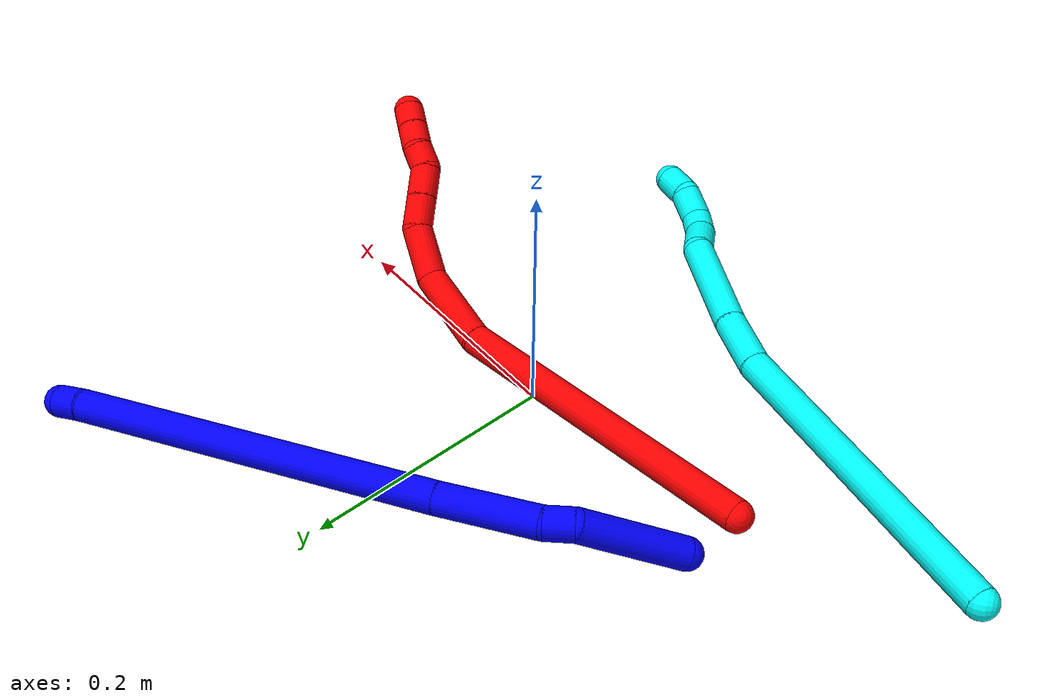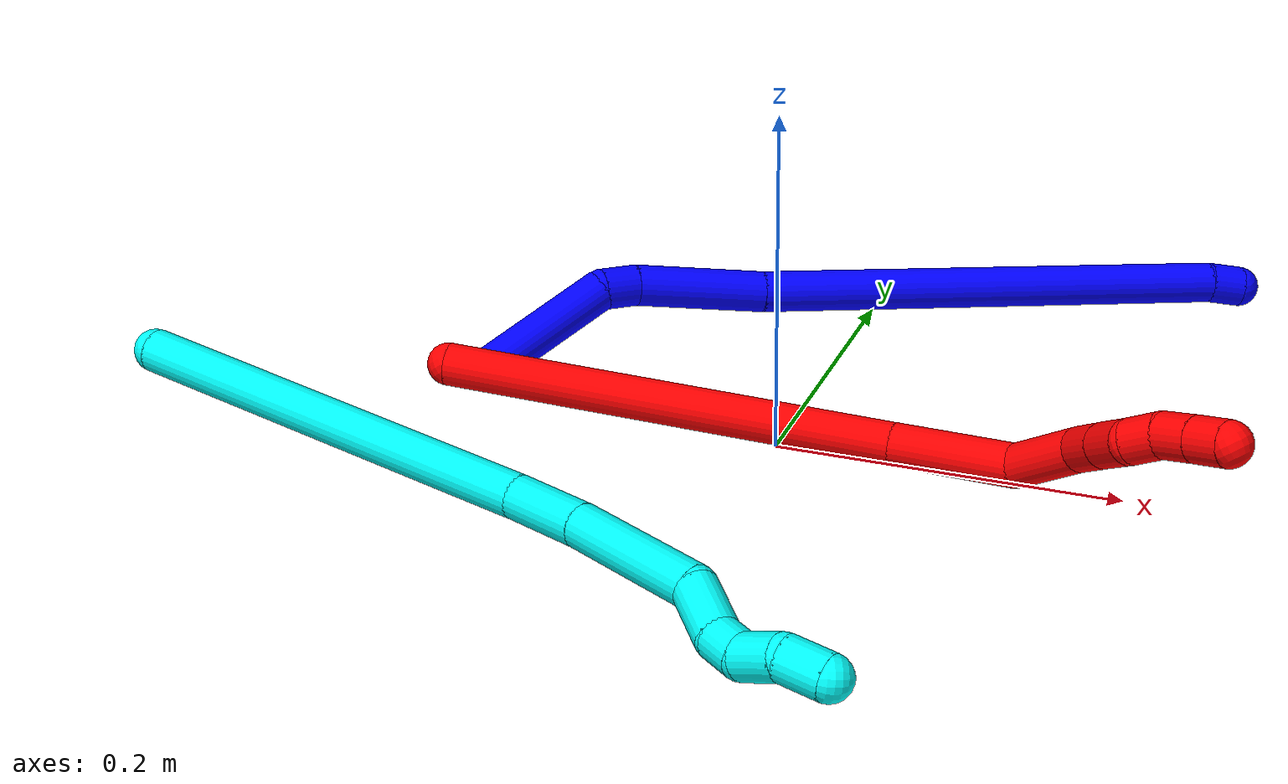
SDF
<sdf version="1.7">
 <world name="default">
  <plugin name="TubeGeneratorPlugin" filename="libtube_generator_plugin.so"/>
  <model name="photoneo_s_sensor">
   <static>1</static>
   <pose>0 0 2 1.57079 1.57079 3.14159</pose>
   <link name="link">
    <inertial><mass>0.1</mass></inertial>
    <sensor name="sensor" type="depth">
     <update_rate>30</update_rate>
     <camera>
      <horizontal_fov>1.22</horizontal_fov>
      <image><width>1920</width><height>1200</height><format>B8G8R8</format></image>
      <clip><near>0.1</near><far>4</far></clip>
      <depth_camera><output>points</output></depth_camera>
     </camera>
     <plugin name="camera_plugin" filename="libgazebo_ros_depth_camera.so">
      <baseline>0.2</baseline>
      <alwaysOn>1</alwaysOn>
      <updateRate>0.0</updateRate>
      <cameraName>camera_ir</cameraName>
      <imageTopicName>/camera/color/image_raw</imageTopicName>
      <cameraInfoTopicName>/camera/color/camera_info</cameraInfoTopicName>
      <depthImageTopicName>/camera/depth/image_raw</depthImageTopicName>
      <depthImageCameraInfoTopicName>/camera/depth/camera_info</depthImageCameraInfoTopicName>
      <pointCloudTopicName>/camera/depth/points</pointCloudTopicName>
      <frameName>fr_optical</frameName>
      <pointCloudCutoff>0.1</pointCloudCutoff>
      <pointCloudCutoffMax>2.0</pointCloudCutoffMax>
      <distortionK1>0</distortionK1>
      <distortionK2>0</distortionK2>
      <distortionK3>0</distortionK3>
      <distortionT1>0</distortionT1>
      <distortionT2>0</distortionT2>
      <CxPrime>0</CxPrime>
      <Cx>0</Cx>
      <Cy>0</Cy>
      <focalLength>0</focalLength>
      <hackBaseline>0</hackBaseline>
     </plugin>
    </sensor>
   </link>
  </model>
  <gravity>0 0 -9.8</gravity>
  <magnetic_field>6e-06 2.3e-05 -4.2e-05</magnetic_field>
  <atmosphere type="adiabatic"/>
  <physics name="default_physics" default="0" type="ode">
   <max_step_size>0.003</max_step_size>
   <real_time_factor>1</real_time_factor>
   <real_time_update_rate>1000</real_time_update_rate>
   <max_contacts>10000</max_contacts>
   <ode>
    <solver>
     <type>quick</type>
     <iters>100</iters>
     <sor>1.3</sor>
     <use_dynamic_moi_rescaling>0</use_dynamic_moi_rescaling>
    </solver>
    <constraints>
     <contact_max_correcting_vel>0</contact_max_correcting_vel>
     <contact_surface_layer>0.001</contact_surface_layer>
     <cfm>0</cfm>
     <erp>0.2</erp>
    </constraints>
   </ode>
  </physics>
  <scene><ambient>0.4 0.4 0.4 1</ambient><background>0.7 0.7 0.7 1</background><shadows>0</shadows></scene>
  <audio><device>default</device></audio>
  <spherical_coordinates>
   <surface_model>EARTH_WGS84</surface_model>
   <latitude_deg>0</latitude_deg>
   <longitude_deg>0</longitude_deg>
   <elevation>0</elevation>
   <heading_deg>0</heading_deg>
  </spherical_coordinates>
  <model name="bin">
   <static>1</static>
   <link name="bottom">
    <collision name="collision-bottom">
     <pose>0 0 -0.01 0 -0 0</pose>
     <geometry><box><size>0.8 0.6 0.02</size></box></geometry>
     <surface>
      <friction><ode><mu>100</mu><mu2>100</mu2></ode></friction>
      <contact><collide_bitmask>65535</collide_bitmask></contact>
     </surface>
    </collision>
   </link>
   <link name="west_wall">
    <collision name="collision-west_wall">
     <pose>-0.41 0 0.1 0 -0 0</pose>
     <geometry><box><size>0.02 0.6 0.2</size></box></geometry>
     <surface>
      <friction><ode><mu>100</mu><mu2>100</mu2></ode></friction>
      <contact><collide_bitmask>65535</collide_bitmask></contact>
     </surface>
    </collision>
   </link>
   <link name="east_wall">
    <collision name="collision-east_wall">
     <pose>0.41 0 0.1 0 -0 0</pose>
     <geometry><box><size>0.02 0.6 0.2</size></box></geometry>
     <surface>
      <friction><ode><mu>100</mu><mu2>100</mu2></ode></friction>
      <contact><collide_bitmask>65535</collide_bitmask></contact>
     </surface>
    </collision>
   </link>
   <link name="south_wall">
    <collision name="collision-south_wall">
     <pose>0 -0.31 0.1 0 -0 0</pose>
     <geometry><box><size>0.8 0.02 0.2</size></box></geometry>
     <surface>
      <friction><ode><mu>100</mu><mu2>100</mu2></ode></friction>
      <contact><collide_bitmask>65535</collide_bitmask></contact>
     </surface>
    </collision>
   </link>
   <link name="north_wall">
    <collision name="collision-north_wall">
     <pose>0 0.31 0.1 0 -0 0</pose>
     <geometry><box><size>0.8 0.02 0.2</size></box></geometry>
     <surface>
      <friction><ode><mu>100</mu><mu2>100</mu2></ode></friction>
      <contact><collide_bitmask>65535</collide_bitmask></contact>
     </surface>
    </collision>
   </link>
  </model>
  <model name="1">
   <static>0</static>
   <link name="1">
    <collision name="collision-cylinder-e_1_1_4">
     <pose>-0.007308 -0.00751 0.000387 1.51927 -0.771061 -0.735797</pose>
     <geometry><cylinder><radius>0.0125</radius><length>0.020972</length></cylinder></geometry>
     <surface>
      <friction><ode><mu>1.16</mu><mu2>1.16</mu2><slip1>0</slip1><slip2>0</slip2></ode></friction>
      <contact><ode><kp>1e+06</kp><kd>1</kd><max_vel>0</max_vel><min_depth>0.001</min_depth></ode></contact>
     </surface>
    </collision>
    <visual name="visual-cylinder-e_1_1_4">
     <pose>-0.007308 -0.00751 0.000387 1.51927 -0.771061 -0.735797</pose>
     <geometry><cylinder><radius>0.0125</radius><length>0.020972</length></cylinder></geometry>
     <material><ambient>0 0 1 1</ambient></material>
    </visual>
    <collision name="collision-cylinder-e_2_4_5">
     <pose>-0.105333 -0.129035 -0.009319 1.65909 -0.670194 -0.727028</pose>
     <geometry><cylinder><radius>0.0125</radius><length>0.292101</length></cylinder></geometry>
     <surface>
      <friction><ode><mu>1.16</mu><mu2>1.16</mu2><slip1>0</slip1><slip2>0</slip2></ode></friction>
      <contact><ode><kp>1e+06</kp><kd>1</kd><max_vel>0</max_vel><min_depth>0.001</min_depth></ode></contact>
     </surface>
    </collision>
    <visual name="visual-cylinder-e_2_4_5">
     <pose>-0.105333 -0.129035 -0.009319 1.65909 -0.670194 -0.727028</pose>
     <geometry><cylinder><radius>0.0125</radius><length>0.292101</length></cylinder></geometry>
     <material><ambient>0 0 1 1</ambient></material>
    </visual>
    <collision name="collision-cylinder-e_3_5_6">
     <pose>-0.222422 -0.272888 -0.020143 1.59527 -0.723643 -0.74</pose>
     <geometry><cylinder><radius>0.0125</radius><length>0.079658</length></cylinder></geometry>
     <surface>
      <friction><ode><mu>1.16</mu><mu2>1.16</mu2><slip1>0</slip1><slip2>0</slip2></ode></friction>
      <contact><ode><kp>1e+06</kp><kd>1</kd><max_vel>0</max_vel><min_depth>0.001</min_depth></ode></contact>
     </surface>
    </collision>
    <visual name="visual-cylinder-e_3_5_6">
     <pose>-0.222422 -0.272888 -0.020143 1.59527 -0.723643 -0.74</pose>
     <geometry><cylinder><radius>0.0125</radius><length>0.079658</length></cylinder></geometry>
     <material><ambient>0 0 1 1</ambient></material>
    </visual>
    <collision name="collision-cylinder-e_4_6_7">
     <pose>-0.253897 -0.312966 -0.020257 1.5107 -0.46167 -0.435596</pose>
     <geometry><cylinder><radius>0.0125</radius><length>0.022914</length></cylinder></geometry>
     <surface>
      <friction><ode><mu>1.16</mu><mu2>1.16</mu2><slip1>0</slip1><slip2>0</slip2></ode></friction>
      <contact><ode><kp>1e+06</kp><kd>1</kd><max_vel>0</max_vel><min_depth>0.001</min_depth></ode></contact>
     </surface>
    </collision>
    <visual name="visual-cylinder-e_4_6_7">
     <pose>-0.253897 -0.312966 -0.020257 1.5107 -0.46167 -0.435596</pose>
     <geometry><cylinder><radius>0.0125</radius><length>0.022914</length></cylinder></geometry>
     <material><ambient>0 0 1 1</ambient></material>
    </visual>
    <collision name="collision-cylinder-e_5_7_2">
     <pose>-0.263667 -0.363502 -0.031188 1.84986 -0.110851 -0.146961</pose>
     <geometry><cylinder><radius>0.0125</radius><length>0.084354</length></cylinder></geometry>
     <surface>
      <friction><ode><mu>1.16</mu><mu2>1.16</mu2><slip1>0</slip1><slip2>0</slip2></ode></friction>
      <contact><ode><kp>1e+06</kp><kd>1</kd><max_vel>0</max_vel><min_depth>0.001</min_depth></ode></contact>
     </surface>
    </collision>
    <visual name="visual-cylinder-e_5_7_2">
     <pose>-0.263667 -0.363502 -0.031188 1.84986 -0.110851 -0.146961</pose>
     <geometry><cylinder><radius>0.0125</radius><length>0.084354</length></cylinder></geometry>
     <material><ambient>0 0 1 1</ambient></material>
    </visual>
    <collision name="collision-sphere-2">
     <pose>-0.268332 -0.403798 -0.042735 0 -0 0</pose>
     <geometry><sphere><radius>0.0125</radius></sphere></geometry>
     <surface>
      <friction><ode><mu>1.16</mu><mu2>1.16</mu2><slip1>0</slip1><slip2>0</slip2></ode></friction>
      <contact><ode><kp>1e+06</kp><kd>1</kd><max_vel>0</max_vel><min_depth>0.001</min_depth></ode></contact>
     </surface>
    </collision>
    <visual name="visual-sphere-2">
     <pose>-0.268332 -0.403798 -0.042735 0 -0 0</pose>
     <geometry><sphere><radius>0.0125</radius></sphere></geometry>
     <material><ambient>0 0 1 1</ambient></material>
    </visual>
    <collision name="collision-sphere-7">
     <pose>-0.259001 -0.323205 -0.019641 0 -0 0</pose>
     <geometry><sphere><radius>0.0125</radius></sphere></geometry>
     <surface>
      <friction><ode><mu>1.16</mu><mu2>1.16</mu2><slip1>0</slip1><slip2>0</slip2></ode></friction>
      <contact><ode><kp>1e+06</kp><kd>1</kd><max_vel>0</max_vel><min_depth>0.001</min_depth></ode></contact>
     </surface>
    </collision>
    <visual name="visual-sphere-7">
     <pose>-0.259001 -0.323205 -0.019641 0 -0 0</pose>
     <geometry><sphere><radius>0.0125</radius></sphere></geometry>
     <material><ambient>0 0 1 1</ambient></material>
    </visual>
    <collision name="collision-sphere-6">
     <pose>-0.248794 -0.302726 -0.020873 0 -0 0</pose>
     <geometry><sphere><radius>0.0125</radius></sphere></geometry>
     <surface>
      <friction><ode><mu>1.16</mu><mu2>1.16</mu2><slip1>0</slip1><slip2>0</slip2></ode></friction>
      <contact><ode><kp>1e+06</kp><kd>1</kd><max_vel>0</max_vel><min_depth>0.001</min_depth></ode></contact>
     </surface>
    </collision>
    <visual name="visual-sphere-6">
     <pose>-0.248794 -0.302726 -0.020873 0 -0 0</pose>
     <geometry><sphere><radius>0.0125</radius></sphere></geometry>
     <material><ambient>0 0 1 1</ambient></material>
    </visual>
    <collision name="collision-sphere-5">
     <pose>-0.196051 -0.243049 -0.019412 0 -0 0</pose>
     <geometry><sphere><radius>0.0125</radius></sphere></geometry>
     <surface>
      <friction><ode><mu>1.16</mu><mu2>1.16</mu2><slip1>0</slip1><slip2>0</slip2></ode></friction>
      <contact><ode><kp>1e+06</kp><kd>1</kd><max_vel>0</max_vel><min_depth>0.001</min_depth></ode></contact>
     </surface>
    </collision>
    <visual name="visual-sphere-5">
     <pose>-0.196051 -0.243049 -0.019412 0 -0 0</pose>
     <geometry><sphere><radius>0.0125</radius></sphere></geometry>
     <material><ambient>0 0 1 1</ambient></material>
    </visual>
    <collision name="collision-sphere-1">
     <geometry><sphere><radius>0.0125</radius></sphere></geometry>
     <surface>
      <friction><ode><mu>1.16</mu><mu2>1.16</mu2><slip1>0</slip1><slip2>0</slip2></ode></friction>
      <contact><ode><kp>1e+06</kp><kd>1</kd><max_vel>0</max_vel><min_depth>0.001</min_depth></ode></contact>
     </surface>
    </collision>
    <visual name="visual-sphere-1">
     <geometry><sphere><radius>0.0125</radius></sphere></geometry>
     <material><ambient>0 0 1 1</ambient></material>
    </visual>
    <collision name="collision-sphere-4">
     <pose>-0.014616 -0.015021 0.000775 0 -0 0</pose>
     <geometry><sphere><radius>0.0125</radius></sphere></geometry>
     <surface>
      <friction><ode><mu>1.16</mu><mu2>1.16</mu2><slip1>0</slip1><slip2>0</slip2></ode></friction>
      <contact><ode><kp>1e+06</kp><kd>1</kd><max_vel>0</max_vel><min_depth>0.001</min_depth></ode></contact>
     </surface>
    </collision>
    <visual name="visual-sphere-4">
     <pose>-0.014616 -0.015021 0.000775 0 -0 0</pose>
     <geometry><sphere><radius>0.0125</radius></sphere></geometry>
     <material><ambient>0 0 1 1</ambient></material>
    </visual>
    <inertial>
     <pose>-0.153396 -0.194841 -0.014827 0 -0 0</pose>
     <mass>0.5</mass>
     <inertia>
      <ixx>0.000162</ixx>
      <ixy>0</ixy>
      <ixz>0</ixz>
      <iyy>-0.000423</iyy>
      <iyz>0</iyz>
      <izz>0.00305</izz>
     </inertia>
    </inertial>
   </link>
   <pose>0.218851 0.287754 0.011833 0.256838 0.491181 -0.31043</pose>
  </model>
  <model name="2">
   <static>0</static>
   <link name="2">
    <collision name="collision-cylinder-e_1_1_4">
     <pose>0.104986 0.023724 0.077134 -0.298384 0.915456 -0.147821</pose>
     <geometry><cylinder><radius>0.0125</radius><length>0.264836</length></cylinder></geometry>
     <surface>
      <friction><ode><mu>1.16</mu><mu2>1.16</mu2><slip1>0</slip1><slip2>0</slip2></ode></friction>
      <contact><ode><kp>1e+06</kp><kd>1</kd><max_vel>0</max_vel><min_depth>0.001</min_depth></ode></contact>
     </surface>
    </collision>
    <visual name="visual-cylinder-e_1_1_4">
     <pose>0.104986 0.023724 0.077134 -0.298384 0.915456 -0.147821</pose>
     <geometry><cylinder><radius>0.0125</radius><length>0.264836</length></cylinder></geometry>
     <material><ambient>1 0 0 1</ambient></material>
    </visual>
    <collision name="collision-cylinder-e_2_4_5">
     <pose>0.236424 0.064198 0.174357 -0.695015 0.790996 -0.300166</pose>
     <geometry><cylinder><radius>0.0125</radius><length>0.0744</length></cylinder></geometry>
     <surface>
      <friction><ode><mu>1.16</mu><mu2>1.16</mu2><slip1>0</slip1><slip2>0</slip2></ode></friction>
      <contact><ode><kp>1e+06</kp><kd>1</kd><max_vel>0</max_vel><min_depth>0.001</min_depth></ode></contact>
     </surface>
    </collision>
    <visual name="visual-cylinder-e_2_4_5">
     <pose>0.236424 0.064198 0.174357 -0.695015 0.790996 -0.300166</pose>
     <geometry><cylinder><radius>0.0125</radius><length>0.0744</length></cylinder></geometry>
     <material><ambient>1 0 0 1</ambient></material>
    </visual>
    <collision name="collision-cylinder-e_3_5_6">
     <pose>0.278087 0.097491 0.197534 -1.38626 0.734995 -0.618996</pose>
     <geometry><cylinder><radius>0.0125</radius><length>0.04537</length></cylinder></geometry>
     <surface>
      <friction><ode><mu>1.16</mu><mu2>1.16</mu2><slip1>0</slip1><slip2>0</slip2></ode></friction>
      <contact><ode><kp>1e+06</kp><kd>1</kd><max_vel>0</max_vel><min_depth>0.001</min_depth></ode></contact>
     </surface>
    </collision>
    <visual name="visual-cylinder-e_3_5_6">
     <pose>0.278087 0.097491 0.197534 -1.38626 0.734995 -0.618996</pose>
     <geometry><cylinder><radius>0.0125</radius><length>0.04537</length></cylinder></geometry>
     <material><ambient>1 0 0 1</ambient></material>
    </visual>
    <collision name="collision-cylinder-e_4_6_7">
     <pose>0.297714 0.126805 0.20221 -1.44707 0.330454 -0.292487</pose>
     <geometry><cylinder><radius>0.0125</radius><length>0.027211</length></cylinder></geometry>
     <surface>
      <friction><ode><mu>1.16</mu><mu2>1.16</mu2><slip1>0</slip1><slip2>0</slip2></ode></friction>
      <contact><ode><kp>1e+06</kp><kd>1</kd><max_vel>0</max_vel><min_depth>0.001</min_depth></ode></contact>
     </surface>
    </collision>
    <visual name="visual-cylinder-e_4_6_7">
     <pose>0.297714 0.126805 0.20221 -1.44707 0.330454 -0.292487</pose>
     <geometry><cylinder><radius>0.0125</radius><length>0.027211</length></cylinder></geometry>
     <material><ambient>1 0 0 1</ambient></material>
    </visual>
    <collision name="collision-cylinder-e_5_7_8">
     <pose>0.306388 0.151934 0.205441 -1.43863 0.329257 -0.288988</pose>
     <geometry><cylinder><radius>0.0125</radius><length>0.026348</length></cylinder></geometry>
     <surface>
      <friction><ode><mu>1.16</mu><mu2>1.16</mu2><slip1>0</slip1><slip2>0</slip2></ode></friction>
      <contact><ode><kp>1e+06</kp><kd>1</kd><max_vel>0</max_vel><min_depth>0.001</min_depth></ode></contact>
     </surface>
    </collision>
    <visual name="visual-cylinder-e_5_7_8">
     <pose>0.306388 0.151934 0.205441 -1.43863 0.329257 -0.288988</pose>
     <geometry><cylinder><radius>0.0125</radius><length>0.026348</length></cylinder></geometry>
     <material><ambient>1 0 0 1</ambient></material>
    </visual>
    <collision name="collision-cylinder-e_6_8_9">
     <pose>0.317974 0.170967 0.209039 -1.28596 0.811338 -0.622614</pose>
     <geometry><cylinder><radius>0.0125</radius><length>0.020204</length></cylinder></geometry>
     <surface>
      <friction><ode><mu>1.16</mu><mu2>1.16</mu2><slip1>0</slip1><slip2>0</slip2></ode></friction>
      <contact><ode><kp>1e+06</kp><kd>1</kd><max_vel>0</max_vel><min_depth>0.001</min_depth></ode></contact>
     </surface>
    </collision>
    <visual name="visual-cylinder-e_6_8_9">
     <pose>0.317974 0.170967 0.209039 -1.28596 0.811338 -0.622614</pose>
     <geometry><cylinder><radius>0.0125</radius><length>0.020204</length></cylinder></geometry>
     <material><ambient>1 0 0 1</ambient></material>
    </visual>
    <collision name="collision-cylinder-e_7_9_10">
     <pose>0.331055 0.18531 0.215329 -1.0562 0.578679 -0.343901</pose>
     <geometry><cylinder><radius>0.0125</radius><length>0.021044</length></cylinder></geometry>
     <surface>
      <friction><ode><mu>1.16</mu><mu2>1.16</mu2><slip1>0</slip1><slip2>0</slip2></ode></friction>
      <contact><ode><kp>1e+06</kp><kd>1</kd><max_vel>0</max_vel><min_depth>0.001</min_depth></ode></contact>
     </surface>
    </collision>
    <visual name="visual-cylinder-e_7_9_10">
     <pose>0.331055 0.18531 0.215329 -1.0562 0.578679 -0.343901</pose>
     <geometry><cylinder><radius>0.0125</radius><length>0.021044</length></cylinder></geometry>
     <material><ambient>1 0 0 1</ambient></material>
    </visual>
    <collision name="collision-cylinder-e_8_10_2">
     <pose>0.342309 0.200485 0.224065 -1.04053 0.563592 -0.328724</pose>
     <geometry><cylinder><radius>0.0125</radius><length>0.020587</length></cylinder></geometry>
     <surface>
      <friction><ode><mu>1.16</mu><mu2>1.16</mu2><slip1>0</slip1><slip2>0</slip2></ode></friction>
      <contact><ode><kp>1e+06</kp><kd>1</kd><max_vel>0</max_vel><min_depth>0.001</min_depth></ode></contact>
     </surface>
    </collision>
    <visual name="visual-cylinder-e_8_10_2">
     <pose>0.342309 0.200485 0.224065 -1.04053 0.563592 -0.328724</pose>
     <geometry><cylinder><radius>0.0125</radius><length>0.020587</length></cylinder></geometry>
     <material><ambient>1 0 0 1</ambient></material>
    </visual>
    <collision name="collision-sphere-2">
     <pose>0.347808 0.207991 0.228466 0 -0 0</pose>
     <geometry><sphere><radius>0.0125</radius></sphere></geometry>
     <surface>
      <friction><ode><mu>1.16</mu><mu2>1.16</mu2><slip1>0</slip1><slip2>0</slip2></ode></friction>
      <contact><ode><kp>1e+06</kp><kd>1</kd><max_vel>0</max_vel><min_depth>0.001</min_depth></ode></contact>
     </surface>
    </collision>
    <visual name="visual-sphere-2">
     <pose>0.347808 0.207991 0.228466 0 -0 0</pose>
     <geometry><sphere><radius>0.0125</radius></sphere></geometry>
     <material><ambient>1 0 0 1</ambient></material>
    </visual>
    <collision name="collision-sphere-10">
     <pose>0.33681 0.192978 0.219664 0 -0 0</pose>
     <geometry><sphere><radius>0.0125</radius></sphere></geometry>
     <surface>
      <friction><ode><mu>1.16</mu><mu2>1.16</mu2><slip1>0</slip1><slip2>0</slip2></ode></friction>
      <contact><ode><kp>1e+06</kp><kd>1</kd><max_vel>0</max_vel><min_depth>0.001</min_depth></ode></contact>
     </surface>
    </collision>
    <visual name="visual-sphere-10">
     <pose>0.33681 0.192978 0.219664 0 -0 0</pose>
     <geometry><sphere><radius>0.0125</radius></sphere></geometry>
     <material><ambient>1 0 0 1</ambient></material>
    </visual>
    <collision name="collision-sphere-9">
     <pose>0.3253 0.177642 0.210993 0 -0 0</pose>
     <geometry><sphere><radius>0.0125</radius></sphere></geometry>
     <surface>
      <friction><ode><mu>1.16</mu><mu2>1.16</mu2><slip1>0</slip1><slip2>0</slip2></ode></friction>
      <contact><ode><kp>1e+06</kp><kd>1</kd><max_vel>0</max_vel><min_depth>0.001</min_depth></ode></contact>
     </surface>
    </collision>
    <visual name="visual-sphere-9">
     <pose>0.3253 0.177642 0.210993 0 -0 0</pose>
     <geometry><sphere><radius>0.0125</radius></sphere></geometry>
     <material><ambient>1 0 0 1</ambient></material>
    </visual>
    <collision name="collision-sphere-4">
     <pose>0.209973 0.047447 0.154267 0 -0 0</pose>
     <geometry><sphere><radius>0.0125</radius></sphere></geometry>
     <surface>
      <friction><ode><mu>1.16</mu><mu2>1.16</mu2><slip1>0</slip1><slip2>0</slip2></ode></friction>
      <contact><ode><kp>1e+06</kp><kd>1</kd><max_vel>0</max_vel><min_depth>0.001</min_depth></ode></contact>
     </surface>
    </collision>
    <visual name="visual-sphere-4">
     <pose>0.209973 0.047447 0.154267 0 -0 0</pose>
     <geometry><sphere><radius>0.0125</radius></sphere></geometry>
     <material><ambient>1 0 0 1</ambient></material>
    </visual>
    <collision name="collision-sphere-1">
     <geometry><sphere><radius>0.0125</radius></sphere></geometry>
     <surface>
      <friction><ode><mu>1.16</mu><mu2>1.16</mu2><slip1>0</slip1><slip2>0</slip2></ode></friction>
      <contact><ode><kp>1e+06</kp><kd>1</kd><max_vel>0</max_vel><min_depth>0.001</min_depth></ode></contact>
     </surface>
    </collision>
    <visual name="visual-sphere-1">
     <geometry><sphere><radius>0.0125</radius></sphere></geometry>
     <material><ambient>1 0 0 1</ambient></material>
    </visual>
    <collision name="collision-sphere-8">
     <pose>0.310648 0.164291 0.207084 0 -0 0</pose>
     <geometry><sphere><radius>0.0125</radius></sphere></geometry>
     <surface>
      <friction><ode><mu>1.16</mu><mu2>1.16</mu2><slip1>0</slip1><slip2>0</slip2></ode></friction>
      <contact><ode><kp>1e+06</kp><kd>1</kd><max_vel>0</max_vel><min_depth>0.001</min_depth></ode></contact>
     </surface>
    </collision>
    <visual name="visual-sphere-8">
     <pose>0.310648 0.164291 0.207084 0 -0 0</pose>
     <geometry><sphere><radius>0.0125</radius></sphere></geometry>
     <material><ambient>1 0 0 1</ambient></material>
    </visual>
    <collision name="collision-sphere-5">
     <pose>0.262875 0.080949 0.194446 0 -0 0</pose>
     <geometry><sphere><radius>0.0125</radius></sphere></geometry>
     <surface>
      <friction><ode><mu>1.16</mu><mu2>1.16</mu2><slip1>0</slip1><slip2>0</slip2></ode></friction>
      <contact><ode><kp>1e+06</kp><kd>1</kd><max_vel>0</max_vel><min_depth>0.001</min_depth></ode></contact>
     </surface>
    </collision>
    <visual name="visual-sphere-5">
     <pose>0.262875 0.080949 0.194446 0 -0 0</pose>
     <geometry><sphere><radius>0.0125</radius></sphere></geometry>
     <material><ambient>1 0 0 1</ambient></material>
    </visual>
    <collision name="collision-sphere-6">
     <pose>0.293299 0.114034 0.200622 0 -0 0</pose>
     <geometry><sphere><radius>0.0125</radius></sphere></geometry>
     <surface>
      <friction><ode><mu>1.16</mu><mu2>1.16</mu2><slip1>0</slip1><slip2>0</slip2></ode></friction>
      <contact><ode><kp>1e+06</kp><kd>1</kd><max_vel>0</max_vel><min_depth>0.001</min_depth></ode></contact>
     </surface>
    </collision>
    <visual name="visual-sphere-6">
     <pose>0.293299 0.114034 0.200622 0 -0 0</pose>
     <geometry><sphere><radius>0.0125</radius></sphere></geometry>
     <material><ambient>1 0 0 1</ambient></material>
    </visual>
    <collision name="collision-sphere-7">
     <pose>0.302129 0.139577 0.203798 0 -0 0</pose>
     <geometry><sphere><radius>0.0125</radius></sphere></geometry>
     <surface>
      <friction><ode><mu>1.16</mu><mu2>1.16</mu2><slip1>0</slip1><slip2>0</slip2></ode></friction>
      <contact><ode><kp>1e+06</kp><kd>1</kd><max_vel>0</max_vel><min_depth>0.001</min_depth></ode></contact>
     </surface>
    </collision>
    <visual name="visual-sphere-7">
     <pose>0.302129 0.139577 0.203798 0 -0 0</pose>
     <geometry><sphere><radius>0.0125</radius></sphere></geometry>
     <material><ambient>1 0 0 1</ambient></material>
    </visual>
    <inertial>
     <pose>0.189246 0.068835 0.13329 0 -0 0</pose>
     <mass>0.5</mass>
     <inertia>
      <ixx>0.000851</ixx>
      <ixy>0</ixy>
      <ixz>0</ixz>
      <iyy>0.00143</iyy>
      <iyz>0</iyz>
      <izz>-0.001566</izz>
     </inertia>
    </inertial>
   </link>
   <pose>-0.194966 -0.019359 0.0302 2.56778 -0.380472 0.569071</pose>
  </model>
  <model name="3">
   <static>0</static>
   <link name="3">
    <collision name="collision-cylinder-e_1_1_4">
     <pose>0.076764 -0.039041 -0.096816 2.75829 0.63406 2.07346</pose>
     <geometry><cylinder><radius>0.0125</radius><length>0.259155</length></cylinder></geometry>
     <surface>
      <friction><ode><mu>1.16</mu><mu2>1.16</mu2><slip1>0</slip1><slip2>0</slip2></ode></friction>
      <contact><ode><kp>1e+06</kp><kd>1</kd><max_vel>0</max_vel><min_depth>0.001</min_depth></ode></contact>
     </surface>
    </collision>
    <visual name="visual-cylinder-e_1_1_4">
     <pose>0.076764 -0.039041 -0.096816 2.75829 0.63406 2.07346</pose>
     <geometry><cylinder><radius>0.0125</radius><length>0.259155</length></cylinder></geometry>
     <material><ambient>0.003922 1 0.996078 1</ambient></material>
    </visual>
    <collision name="collision-cylinder-e_2_4_5">
     <pose>0.171021 -0.08497 -0.208329 2.70335 0.822796 2.19768</pose>
     <geometry><cylinder><radius>0.0125</radius><length>0.047725</length></cylinder></geometry>
     <surface>
      <friction><ode><mu>1.16</mu><mu2>1.16</mu2><slip1>0</slip1><slip2>0</slip2></ode></friction>
      <contact><ode><kp>1e+06</kp><kd>1</kd><max_vel>0</max_vel><min_depth>0.001</min_depth></ode></contact>
     </surface>
    </collision>
    <visual name="visual-cylinder-e_2_4_5">
     <pose>0.171021 -0.08497 -0.208329 2.70335 0.822796 2.19768</pose>
     <geometry><cylinder><radius>0.0125</radius><length>0.047725</length></cylinder></geometry>
     <material><ambient>0.003922 1 0.996078 1</ambient></material>
    </visual>
    <collision name="collision-cylinder-e_3_5_6">
     <pose>0.222324 -0.105992 -0.246639 2.6022 0.887596 2.08828</pose>
     <geometry><cylinder><radius>0.0125</radius><length>0.08719</length></cylinder></geometry>
     <surface>
      <friction><ode><mu>1.16</mu><mu2>1.16</mu2><slip1>0</slip1><slip2>0</slip2></ode></friction>
      <contact><ode><kp>1e+06</kp><kd>1</kd><max_vel>0</max_vel><min_depth>0.001</min_depth></ode></contact>
     </surface>
    </collision>
    <visual name="visual-cylinder-e_3_5_6">
     <pose>0.222324 -0.105992 -0.246639 2.6022 0.887596 2.08828</pose>
     <geometry><cylinder><radius>0.0125</radius><length>0.08719</length></cylinder></geometry>
     <material><ambient>0.003922 1 0.996078 1</ambient></material>
    </visual>
    <collision name="collision-cylinder-e_4_6_7">
     <pose>0.268237 -0.131612 -0.274069 1.8916 0.78541 1.04236</pose>
     <geometry><cylinder><radius>0.0125</radius><length>0.034231</length></cylinder></geometry>
     <surface>
      <friction><ode><mu>1.16</mu><mu2>1.16</mu2><slip1>0</slip1><slip2>0</slip2></ode></friction>
      <contact><ode><kp>1e+06</kp><kd>1</kd><max_vel>0</max_vel><min_depth>0.001</min_depth></ode></contact>
     </surface>
    </collision>
    <visual name="visual-cylinder-e_4_6_7">
     <pose>0.268237 -0.131612 -0.274069 1.8916 0.78541 1.04236</pose>
     <geometry><cylinder><radius>0.0125</radius><length>0.034231</length></cylinder></geometry>
     <material><ambient>0.003922 1 0.996078 1</ambient></material>
    </visual>
    <collision name="collision-cylinder-e_5_7_8">
     <pose>0.288436 -0.147113 -0.282203 2.39237 0.941215 1.82565</pose>
     <geometry><cylinder><radius>0.0125</radius><length>0.020033</length></cylinder></geometry>
     <surface>
      <friction><ode><mu>1.16</mu><mu2>1.16</mu2><slip1>0</slip1><slip2>0</slip2></ode></friction>
      <contact><ode><kp>1e+06</kp><kd>1</kd><max_vel>0</max_vel><min_depth>0.001</min_depth></ode></contact>
     </surface>
    </collision>
    <visual name="visual-cylinder-e_5_7_8">
     <pose>0.288436 -0.147113 -0.282203 2.39237 0.941215 1.82565</pose>
     <geometry><cylinder><radius>0.0125</radius><length>0.020033</length></cylinder></geometry>
     <material><ambient>0.003922 1 0.996078 1</ambient></material>
    </visual>
    <collision name="collision-cylinder-e_6_8_9">
     <pose>0.307194 -0.15046 -0.29409 -3.0533 0.95167 -2.97057</pose>
     <geometry><cylinder><radius>0.0125</radius><length>0.026185</length></cylinder></geometry>
     <surface>
      <friction><ode><mu>1.16</mu><mu2>1.16</mu2><slip1>0</slip1><slip2>0</slip2></ode></friction>
      <contact><ode><kp>1e+06</kp><kd>1</kd><max_vel>0</max_vel><min_depth>0.001</min_depth></ode></contact>
     </surface>
    </collision>
    <visual name="visual-cylinder-e_6_8_9">
     <pose>0.307194 -0.15046 -0.29409 -3.0533 0.95167 -2.97057</pose>
     <geometry><cylinder><radius>0.0125</radius><length>0.026185</length></cylinder></geometry>
     <material><ambient>0.003922 1 0.996078 1</ambient></material>
    </visual>
    <collision name="collision-cylinder-e_7_9_2">
     <pose>0.325395 -0.153864 -0.311087 2.7337 0.633185 2.01535</pose>
     <geometry><cylinder><radius>0.0125</radius><length>0.025481</length></cylinder></geometry>
     <surface>
      <friction><ode><mu>1.16</mu><mu2>1.16</mu2><slip1>0</slip1><slip2>0</slip2></ode></friction>
      <contact><ode><kp>1e+06</kp><kd>1</kd><max_vel>0</max_vel><min_depth>0.001</min_depth></ode></contact>
     </surface>
    </collision>
    <visual name="visual-cylinder-e_7_9_2">
     <pose>0.325395 -0.153864 -0.311087 2.7337 0.633185 2.01535</pose>
     <geometry><cylinder><radius>0.0125</radius><length>0.025481</length></cylinder></geometry>
     <material><ambient>0.003922 1 0.996078 1</ambient></material>
    </visual>
    <collision name="collision-sphere-2">
     <pose>0.332934 -0.157939 -0.320515 0 -0 0</pose>
     <geometry><sphere><radius>0.0125</radius></sphere></geometry>
     <surface>
      <friction><ode><mu>1.16</mu><mu2>1.16</mu2><slip1>0</slip1><slip2>0</slip2></ode></friction>
      <contact><ode><kp>1e+06</kp><kd>1</kd><max_vel>0</max_vel><min_depth>0.001</min_depth></ode></contact>
     </surface>
    </collision>
    <visual name="visual-sphere-2">
     <pose>0.332934 -0.157939 -0.320515 0 -0 0</pose>
     <geometry><sphere><radius>0.0125</radius></sphere></geometry>
     <material><ambient>0.003922 1 0.996078 1</ambient></material>
    </visual>
    <collision name="collision-sphere-9">
     <pose>0.317857 -0.14979 -0.301659 0 -0 0</pose>
     <geometry><sphere><radius>0.0125</radius></sphere></geometry>
     <surface>
      <friction><ode><mu>1.16</mu><mu2>1.16</mu2><slip1>0</slip1><slip2>0</slip2></ode></friction>
      <contact><ode><kp>1e+06</kp><kd>1</kd><max_vel>0</max_vel><min_depth>0.001</min_depth></ode></contact>
     </surface>
    </collision>
    <visual name="visual-sphere-9">
     <pose>0.317857 -0.14979 -0.301659 0 -0 0</pose>
     <geometry><sphere><radius>0.0125</radius></sphere></geometry>
     <material><ambient>0.003922 1 0.996078 1</ambient></material>
    </visual>
    <collision name="collision-sphere-4">
     <pose>0.153529 -0.078082 -0.193632 0 -0 0</pose>
     <geometry><sphere><radius>0.0125</radius></sphere></geometry>
     <surface>
      <friction><ode><mu>1.16</mu><mu2>1.16</mu2><slip1>0</slip1><slip2>0</slip2></ode></friction>
      <contact><ode><kp>1e+06</kp><kd>1</kd><max_vel>0</max_vel><min_depth>0.001</min_depth></ode></contact>
     </surface>
    </collision>
    <visual name="visual-sphere-4">
     <pose>0.153529 -0.078082 -0.193632 0 -0 0</pose>
     <geometry><sphere><radius>0.0125</radius></sphere></geometry>
     <material><ambient>0.003922 1 0.996078 1</ambient></material>
    </visual>
    <collision name="collision-sphere-1">
     <geometry><sphere><radius>0.0125</radius></sphere></geometry>
     <surface>
      <friction><ode><mu>1.16</mu><mu2>1.16</mu2><slip1>0</slip1><slip2>0</slip2></ode></friction>
      <contact><ode><kp>1e+06</kp><kd>1</kd><max_vel>0</max_vel><min_depth>0.001</min_depth></ode></contact>
     </surface>
    </collision>
    <visual name="visual-sphere-1">
     <geometry><sphere><radius>0.0125</radius></sphere></geometry>
     <material><ambient>0.003922 1 0.996078 1</ambient></material>
    </visual>
    <collision name="collision-sphere-8">
     <pose>0.296532 -0.15113 -0.286522 0 -0 0</pose>
     <geometry><sphere><radius>0.0125</radius></sphere></geometry>
     <surface>
      <friction><ode><mu>1.16</mu><mu2>1.16</mu2><slip1>0</slip1><slip2>0</slip2></ode></friction>
      <contact><ode><kp>1e+06</kp><kd>1</kd><max_vel>0</max_vel><min_depth>0.001</min_depth></ode></contact>
     </surface>
    </collision>
    <visual name="visual-sphere-8">
     <pose>0.296532 -0.15113 -0.286522 0 -0 0</pose>
     <geometry><sphere><radius>0.0125</radius></sphere></geometry>
     <material><ambient>0.003922 1 0.996078 1</ambient></material>
    </visual>
    <collision name="collision-sphere-5">
     <pose>0.188514 -0.091857 -0.223026 0 -0 0</pose>
     <geometry><sphere><radius>0.0125</radius></sphere></geometry>
     <surface>
      <friction><ode><mu>1.16</mu><mu2>1.16</mu2><slip1>0</slip1><slip2>0</slip2></ode></friction>
      <contact><ode><kp>1e+06</kp><kd>1</kd><max_vel>0</max_vel><min_depth>0.001</min_depth></ode></contact>
     </surface>
    </collision>
    <visual name="visual-sphere-5">
     <pose>0.188514 -0.091857 -0.223026 0 -0 0</pose>
     <geometry><sphere><radius>0.0125</radius></sphere></geometry>
     <material><ambient>0.003922 1 0.996078 1</ambient></material>
    </visual>
    <collision name="collision-sphere-6">
     <pose>0.256135 -0.120127 -0.270253 0 -0 0</pose>
     <geometry><sphere><radius>0.0125</radius></sphere></geometry>
     <surface>
      <friction><ode><mu>1.16</mu><mu2>1.16</mu2><slip1>0</slip1><slip2>0</slip2></ode></friction>
      <contact><ode><kp>1e+06</kp><kd>1</kd><max_vel>0</max_vel><min_depth>0.001</min_depth></ode></contact>
     </surface>
    </collision>
    <visual name="visual-sphere-6">
     <pose>0.256135 -0.120127 -0.270253 0 -0 0</pose>
     <geometry><sphere><radius>0.0125</radius></sphere></geometry>
     <material><ambient>0.003922 1 0.996078 1</ambient></material>
    </visual>
    <collision name="collision-sphere-7">
     <pose>0.28034 -0.143097 -0.277885 0 -0 0</pose>
     <geometry><sphere><radius>0.0125</radius></sphere></geometry>
     <surface>
      <friction><ode><mu>1.16</mu><mu2>1.16</mu2><slip1>0</slip1><slip2>0</slip2></ode></friction>
      <contact><ode><kp>1e+06</kp><kd>1</kd><max_vel>0</max_vel><min_depth>0.001</min_depth></ode></contact>
     </surface>
    </collision>
    <visual name="visual-sphere-7">
     <pose>0.28034 -0.143097 -0.277885 0 -0 0</pose>
     <geometry><sphere><radius>0.0125</radius></sphere></geometry>
     <material><ambient>0.003922 1 0.996078 1</ambient></material>
    </visual>
    <inertial>
     <pose>0.157472 -0.077454 -0.1744 0 -0 0</pose>
     <mass>0.5</mass>
     <inertia>
      <ixx>0.00051</ixx>
      <ixy>0</ixy>
      <ixz>0</ixz>
      <iyy>0.002059</iyy>
      <iyz>0</iyz>
      <izz>-0.000485</izz>
     </inertia>
    </inertial>
   </link>
   <pose>-0.350545 -0.082671 0.043125 1.43058 -0.481592 -1.00183</pose>
  </model>
 </world>
</sdf>
